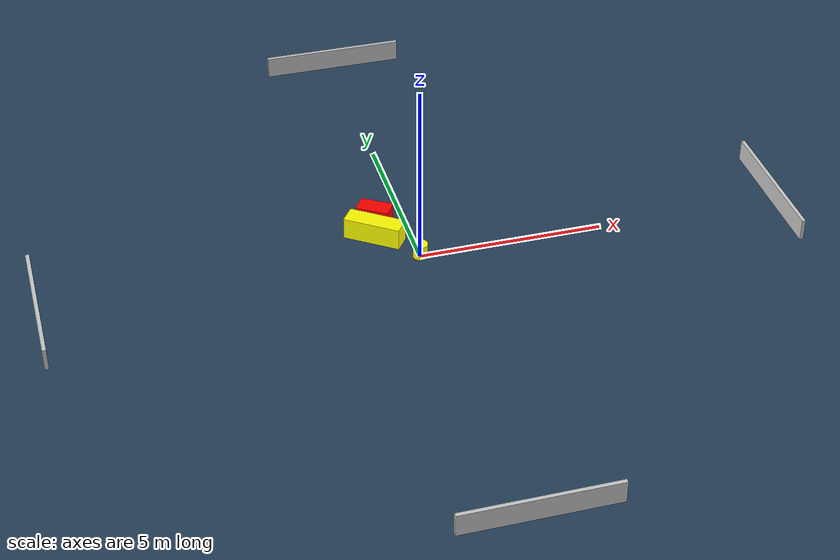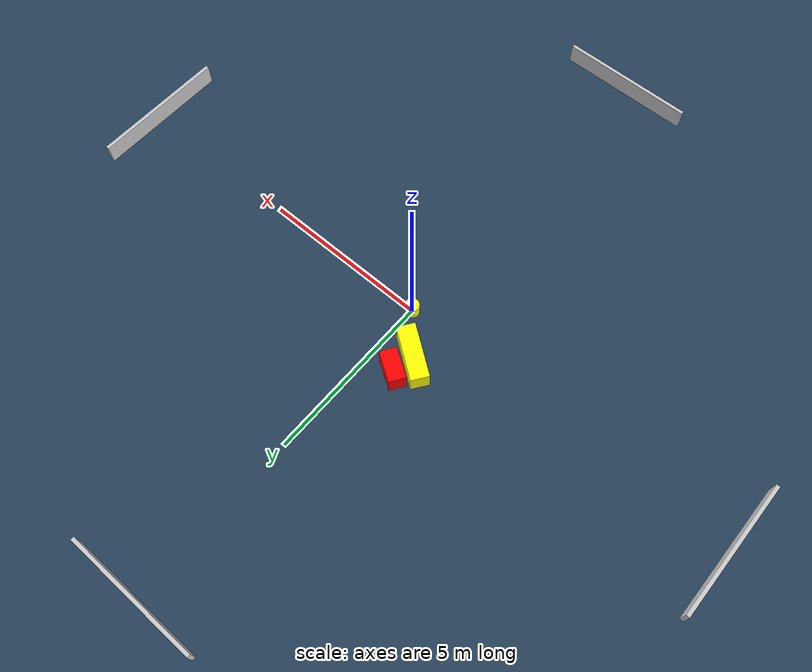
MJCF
<?xml version="1.0" ?>
<mujoco model="generated_environment">
  <option timestep="0.01" integrator="RK4" cone="elliptic"/>
  <default>
    <geom density="1"/>
  </default>
  <asset>
    <texture builtin="gradient" height="3072" name="skybox" rgb1="0.3 0.5 0.7" rgb2="0 0 0" type="skybox" width="512"/>
    <texture builtin="checker" height="300" name="groundplane" rgb1="0.2 0.3 0.4" rgb2="0.1 0.2 0.3" type="2d" width="300"/>
    <material name="groundplane" reflectance="0.2" texrepeat="5 5" texture="groundplane"/>
  </asset>
  <worldbody>
    <light dir="0 0 -1" directional="true" pos="0 0 1.5"/>
    <geom condim="3" friction="0.5 0.005 0.001" material="groundplane" name="floor" pos="0 0 0" size="0 0 0.05" type="plane"/>
    <body name="walls">
      <geom name="wall_1" condim="4" pos="-10.0 0.0 0.3" rgba="0.800000011920929 0.800000011920929 0.800000011920929 1.0" size="0.05 2.0 0.3" type="box"/>
      <geom name="wall_2" condim="4" pos="10.0 0.0 0.3" rgba="0.800000011920929 0.800000011920929 0.800000011920929 1.0" size="0.05 2.0 0.3" type="box"/>
      <geom name="wall_3" condim="4" pos="0.0 -10.0 0.3" rgba="0.800000011920929 0.800000011920929 0.800000011920929 1.0" size="2.0 0.05 0.3" type="box"/>
      <geom name="wall_4" condim="4" pos="0.0 10.0 0.3" rgba="0.800000011920929 0.800000011920929 0.800000011920929 1.0" size="2.0 0.05 0.3" type="box"/>
    </body>
    <body name="robot">
      <joint name="joint_x" type="slide" pos="0 0 0" axis="1 0 0"/>
      <joint name="joint_y" type="slide" pos="0 0 0" axis="0 1 0"/>
      <geom name="robot" type="cylinder" pos="0.0 0.0 0.2" size="0.2 0.2 0.0" mass="5.0" friction="1.0 0.005 0.0001" condim="4" rgba="1.0 1.0 0.0 1.0"/>
    </body>
    <body name="obstacle_1_movable">
      <geom name="obstacle_1_movable" condim="4" pos="-0.9584333753451351 1.094129034157178 0.3" euler="0 0 54.50719352865411" friction="0.0 0.005 0.001" rgba="1.0 1.0 0.0 1.0" size="0.26149330541105065 0.7832815537549791 0.3" type="box" mass="0.1"/>
      <joint type="free"/>
    </body>
    <body name="obstacle_2_static">
      <geom name="obstacle_2_static" condim="4" pos="-0.8012966392592579 1.7123839632668572 0.3" euler="0 0 57.88821079698225" friction="0.0 0.005 0.001" rgba="1.0 0.0 0.0 1.0" size="0.2429757390082407 0.4471030538103048 0.3" type="box"/>
    </body>
  </worldbody>
  <actuator>
    <motor name="actuator_x" joint="joint_x" gear="1" ctrlrange="-1 1"/>
    <motor name="actuator_y" joint="joint_y" gear="1" ctrlrange="-1 1"/>
  </actuator>
</mujoco>
